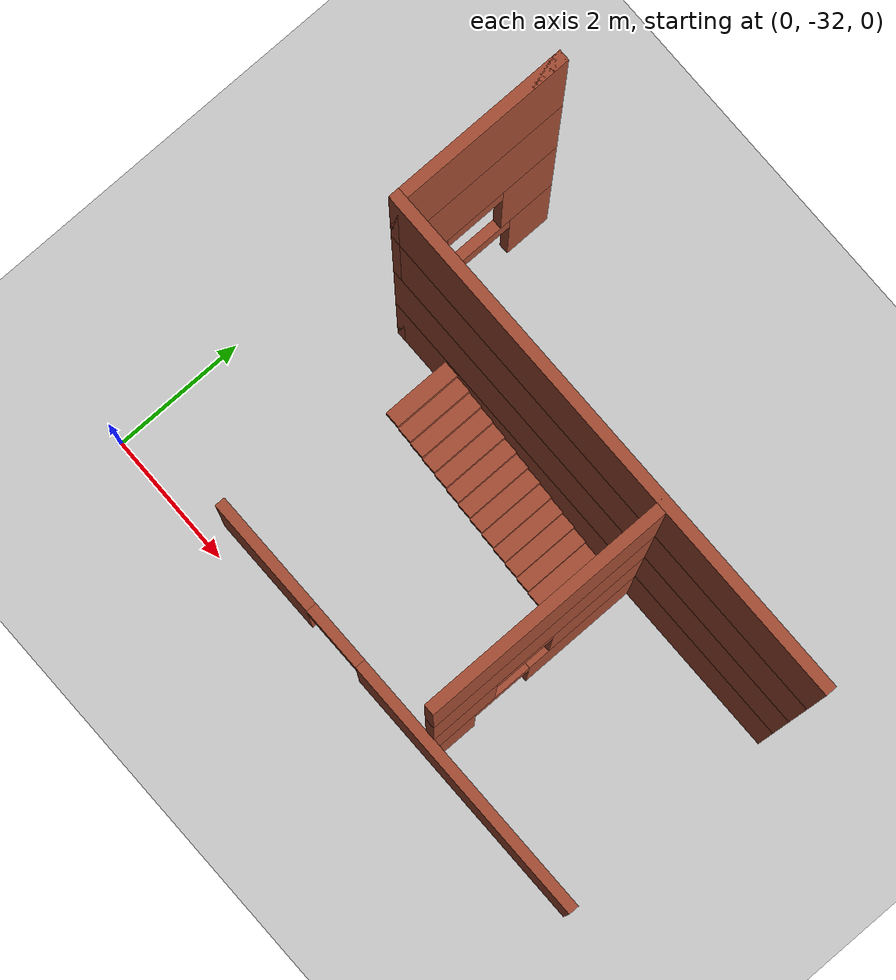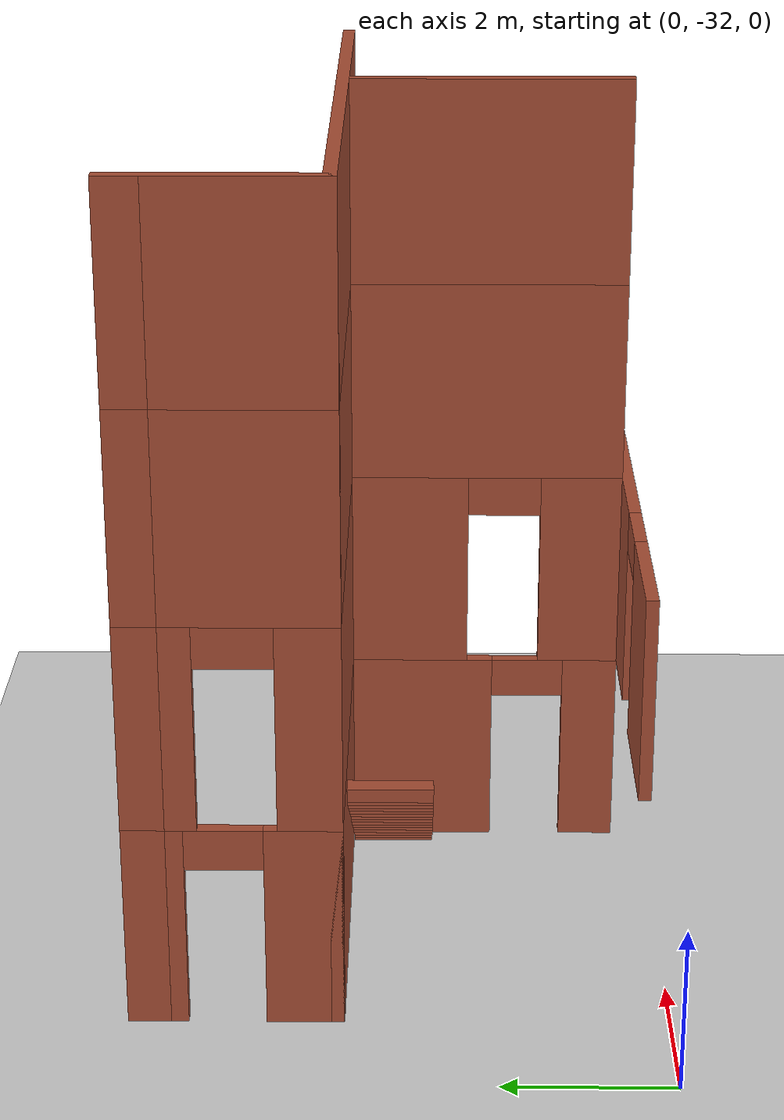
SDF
<sdf version="1.7">
 <world name="default">
  <model name="ground_plane">
   <static>1</static>
   <link name="link">
    <collision name="collision">
     <geometry><plane><normal>0 0 1</normal><size>300 300</size></plane></geometry>
     <surface>
      <contact><collide_bitmask>65535</collide_bitmask></contact>
      <friction><ode><mu>100</mu><mu2>50</mu2></ode></friction>
     </surface>
    </collision>
    <visual name="visual">
     <cast_shadows>0</cast_shadows>
     <geometry><plane><normal>0 0 1</normal><size>300 300</size></plane></geometry>
     <material>
      <script><uri>file://media/materials/scripts/gazebo.material</uri><name>Gazebo/Grey</name></script>
     </material>
    </visual>
   </link>
  </model>
  <model name="Drone_House_0">
   <pose>0.722097 -29.4245 0 0 -0 0</pose>
   <link name="Stairs_0">
    <visual name="Stairs_0_Visual_0">
     <pose>4.91856 0.660416 0.083333 0 -0 -1.5708</pose>
     <geometry><box><size>1 0.233333 0.166667</size></box></geometry>
     <material>
      <script><uri>file://media/materials/scripts/gazebo.material</uri><name>Gazebo/Bricks</name></script>
      <ambient>1 1 1 1</ambient>
     </material>
     <meta><layer>0</layer></meta>
    </visual>
    <collision name="Stairs_0_Collision_0">
     <geometry><box><size>1 0.233333 0.166667</size></box></geometry>
     <pose>4.91856 0.660416 0.083333 0 -0 -1.5708</pose>
    </collision>
    <visual name="Stairs_0_Visual_1">
     <pose>4.68522 0.660416 0.25 0 -0 -1.5708</pose>
     <geometry><box><size>1 0.233333 0.166667</size></box></geometry>
     <material>
      <script><uri>file://media/materials/scripts/gazebo.material</uri><name>Gazebo/Bricks</name></script>
      <ambient>1 1 1 1</ambient>
     </material>
     <meta><layer>0</layer></meta>
    </visual>
    <collision name="Stairs_0_Collision_1">
     <geometry><box><size>1 0.233333 0.166667</size></box></geometry>
     <pose>4.68522 0.660416 0.25 0 -0 -1.5708</pose>
    </collision>
    <visual name="Stairs_0_Visual_2">
     <pose>4.45189 0.660416 0.416667 0 -0 -1.5708</pose>
     <geometry><box><size>1 0.233333 0.166667</size></box></geometry>
     <material>
      <script><uri>file://media/materials/scripts/gazebo.material</uri><name>Gazebo/Bricks</name></script>
      <ambient>1 1 1 1</ambient>
     </material>
     <meta><layer>0</layer></meta>
    </visual>
    <collision name="Stairs_0_Collision_2">
     <geometry><box><size>1 0.233333 0.166667</size></box></geometry>
     <pose>4.45189 0.660416 0.416667 0 -0 -1.5708</pose>
    </collision>
    <visual name="Stairs_0_Visual_3">
     <pose>4.21856 0.660416 0.583333 0 -0 -1.5708</pose>
     <geometry><box><size>1 0.233333 0.166667</size></box></geometry>
     <material>
      <script><uri>file://media/materials/scripts/gazebo.material</uri><name>Gazebo/Bricks</name></script>
      <ambient>1 1 1 1</ambient>
     </material>
     <meta><layer>0</layer></meta>
    </visual>
    <collision name="Stairs_0_Collision_3">
     <geometry><box><size>1 0.233333 0.166667</size></box></geometry>
     <pose>4.21856 0.660416 0.583333 0 -0 -1.5708</pose>
    </collision>
    <visual name="Stairs_0_Visual_4">
     <pose>3.98522 0.660417 0.75 0 -0 -1.5708</pose>
     <geometry><box><size>1 0.233333 0.166667</size></box></geometry>
     <material>
      <script><uri>file://media/materials/scripts/gazebo.material</uri><name>Gazebo/Bricks</name></script>
      <ambient>1 1 1 1</ambient>
     </material>
     <meta><layer>0</layer></meta>
    </visual>
    <collision name="Stairs_0_Collision_4">
     <geometry><box><size>1 0.233333 0.166667</size></box></geometry>
     <pose>3.98522 0.660417 0.75 0 -0 -1.5708</pose>
    </collision>
    <visual name="Stairs_0_Visual_5">
     <pose>3.75189 0.660417 0.916667 0 -0 -1.5708</pose>
     <geometry><box><size>1 0.233333 0.166667</size></box></geometry>
     <material>
      <script><uri>file://media/materials/scripts/gazebo.material</uri><name>Gazebo/Bricks</name></script>
      <ambient>1 1 1 1</ambient>
     </material>
     <meta><layer>0</layer></meta>
    </visual>
    <collision name="Stairs_0_Collision_5">
     <geometry><box><size>1 0.233333 0.166667</size></box></geometry>
     <pose>3.75189 0.660417 0.916667 0 -0 -1.5708</pose>
    </collision>
    <visual name="Stairs_0_Visual_6">
     <pose>3.51856 0.660417 1.08333 0 -0 -1.5708</pose>
     <geometry><box><size>1 0.233333 0.166667</size></box></geometry>
     <material>
      <script><uri>file://media/materials/scripts/gazebo.material</uri><name>Gazebo/Bricks</name></script>
      <ambient>1 1 1 1</ambient>
     </material>
     <meta><layer>0</layer></meta>
    </visual>
    <collision name="Stairs_0_Collision_6">
     <geometry><box><size>1 0.233333 0.166667</size></box></geometry>
     <pose>3.51856 0.660417 1.08333 0 -0 -1.5708</pose>
    </collision>
    <visual name="Stairs_0_Visual_7">
     <pose>3.28522 0.660417 1.25 0 -0 -1.5708</pose>
     <geometry><box><size>1 0.233333 0.166667</size></box></geometry>
     <material>
      <script><uri>file://media/materials/scripts/gazebo.material</uri><name>Gazebo/Bricks</name></script>
      <ambient>1 1 1 1</ambient>
     </material>
     <meta><layer>0</layer></meta>
    </visual>
    <collision name="Stairs_0_Collision_7">
     <geometry><box><size>1 0.233333 0.166667</size></box></geometry>
     <pose>3.28522 0.660417 1.25 0 -0 -1.5708</pose>
    </collision>
    <visual name="Stairs_0_Visual_8">
     <pose>3.05189 0.660417 1.41667 0 -0 -1.5708</pose>
     <geometry><box><size>1 0.233333 0.166667</size></box></geometry>
     <material>
      <script><uri>file://media/materials/scripts/gazebo.material</uri><name>Gazebo/Bricks</name></script>
      <ambient>1 1 1 1</ambient>
     </material>
     <meta><layer>0</layer></meta>
    </visual>
    <collision name="Stairs_0_Collision_8">
     <geometry><box><size>1 0.233333 0.166667</size></box></geometry>
     <pose>3.05189 0.660417 1.41667 0 -0 -1.5708</pose>
    </collision>
    <visual name="Stairs_0_Visual_9">
     <pose>2.81856 0.660417 1.58333 0 -0 -1.5708</pose>
     <geometry><box><size>1 0.233333 0.166667</size></box></geometry>
     <material>
      <script><uri>file://media/materials/scripts/gazebo.material</uri><name>Gazebo/Bricks</name></script>
      <ambient>1 1 1 1</ambient>
     </material>
     <meta><layer>0</layer></meta>
    </visual>
    <collision name="Stairs_0_Collision_9">
     <geometry><box><size>1 0.233333 0.166667</size></box></geometry>
     <pose>2.81856 0.660417 1.58333 0 -0 -1.5708</pose>
    </collision>
    <visual name="Stairs_0_Visual_10">
     <pose>2.58522 0.660417 1.75 0 -0 -1.5708</pose>
     <geometry><box><size>1 0.233333 0.166667</size></box></geometry>
     <material>
      <script><uri>file://media/materials/scripts/gazebo.material</uri><name>Gazebo/Bricks</name></script>
      <ambient>1 1 1 1</ambient>
     </material>
     <meta><layer>0</layer></meta>
    </visual>
    <collision name="Stairs_0_Collision_10">
     <geometry><box><size>1 0.233333 0.166667</size></box></geometry>
     <pose>2.58522 0.660417 1.75 0 -0 -1.5708</pose>
    </collision>
    <visual name="Stairs_0_Visual_11">
     <pose>2.35189 0.660417 1.91667 0 -0 -1.5708</pose>
     <geometry><box><size>1 0.233333 0.166667</size></box></geometry>
     <material>
      <script><uri>file://media/materials/scripts/gazebo.material</uri><name>Gazebo/Bricks</name></script>
      <ambient>1 1 1 1</ambient>
     </material>
     <meta><layer>0</layer></meta>
    </visual>
    <collision name="Stairs_0_Collision_11">
     <geometry><box><size>1 0.233333 0.166667</size></box></geometry>
     <pose>2.35189 0.660417 1.91667 0 -0 -1.5708</pose>
    </collision>
    <visual name="Stairs_0_Visual_12">
     <pose>2.11856 0.660417 2.08333 0 -0 -1.5708</pose>
     <geometry><box><size>1 0.233333 0.166667</size></box></geometry>
     <material>
      <script><uri>file://media/materials/scripts/gazebo.material</uri><name>Gazebo/Bricks</name></script>
      <ambient>1 1 1 1</ambient>
     </material>
     <meta><layer>0</layer></meta>
    </visual>
    <collision name="Stairs_0_Collision_12">
     <geometry><box><size>1 0.233333 0.166667</size></box></geometry>
     <pose>2.11856 0.660417 2.08333 0 -0 -1.5708</pose>
    </collision>
    <visual name="Stairs_0_Visual_13">
     <pose>1.88522 0.660417 2.25 0 -0 -1.5708</pose>
     <geometry><box><size>1 0.233333 0.166667</size></box></geometry>
     <material>
      <script><uri>file://media/materials/scripts/gazebo.material</uri><name>Gazebo/Bricks</name></script>
      <ambient>1 1 1 1</ambient>
     </material>
     <meta><layer>0</layer></meta>
    </visual>
    <collision name="Stairs_0_Collision_13">
     <geometry><box><size>1 0.233333 0.166667</size></box></geometry>
     <pose>1.88522 0.660417 2.25 0 -0 -1.5708</pose>
    </collision>
    <visual name="Stairs_0_Visual_14">
     <pose>1.65189 0.660417 2.41667 0 -0 -1.5708</pose>
     <geometry><box><size>1 0.233333 0.166667</size></box></geometry>
     <material>
      <script><uri>file://media/materials/scripts/gazebo.material</uri><name>Gazebo/Bricks</name></script>
      <ambient>1 1 1 1</ambient>
     </material>
     <meta><layer>0</layer></meta>
    </visual>
    <collision name="Stairs_0_Collision_14">
     <geometry><box><size>1 0.233333 0.166667</size></box></geometry>
     <pose>1.65189 0.660417 2.41667 0 -0 -1.5708</pose>
    </collision>
   </link>
   <link name="Wall_105">
    <collision name="Wall_105_Collision">
     <geometry><box><size>3.5 0.15 2.5</size></box></geometry>
     <pose>0 0 1.25 0 -0 0</pose>
    </collision>
    <visual name="Wall_105_Visual">
     <pose>0 0 1.25 0 -0 0</pose>
     <geometry><box><size>3.5 0.15 2.5</size></box></geometry>
     <material>
      <script><uri>file://media/materials/scripts/gazebo.material</uri><name>Gazebo/Bricks</name></script>
      <ambient>1 1 1 1</ambient>
     </material>
     <meta><layer>2</layer></meta>
    </visual>
    <pose>5.09404 -0.429379 5 0 -0 -1.5708</pose>
   </link>
   <link name="Wall_112">
    <collision name="Wall_112_Collision">
     <geometry><box><size>0.5 0.15 2.5</size></box></geometry>
     <pose>0 0 1.25 0 -0 0</pose>
    </collision>
    <visual name="Wall_112_Visual">
     <pose>0 0 1.25 0 -0 0</pose>
     <geometry><box><size>0.5 0.15 2.5</size></box></geometry>
     <material>
      <script><uri>file://media/materials/scripts/gazebo.material</uri><name>Gazebo/Bricks</name></script>
      <ambient>1 1 1 1</ambient>
     </material>
     <meta><layer>3</layer></meta>
    </visual>
    <pose>0.626064 3.425 7.5 0 -0 1.5708</pose>
   </link>
   <link name="Wall_116">
    <collision name="Wall_116_Collision">
     <geometry><box><size>2.5 0.15 2.5</size></box></geometry>
     <pose>0 0 1.25 0 -0 0</pose>
    </collision>
    <visual name="Wall_116_Visual">
     <pose>0 0 1.25 0 -0 0</pose>
     <geometry><box><size>2.5 0.15 2.5</size></box></geometry>
     <material>
      <script><uri>file://media/materials/scripts/gazebo.material</uri><name>Gazebo/Bricks</name></script>
      <ambient>1 1 1 1</ambient>
     </material>
     <meta><layer>3</layer></meta>
    </visual>
    <pose>0.626064 2.425 7.5 0 -0 -1.5708</pose>
   </link>
   <link name="Wall_117">
    <collision name="Wall_117_Collision">
     <geometry><box><size>7.25 0.15 2.5</size></box></geometry>
     <pose>0 0 1.25 0 -0 0</pose>
    </collision>
    <visual name="Wall_117_Visual">
     <pose>0 0 1.25 0 -0 0</pose>
     <geometry><box><size>7.25 0.15 2.5</size></box></geometry>
     <material>
      <script><uri>file://media/materials/scripts/gazebo.material</uri><name>Gazebo/Bricks</name></script>
      <ambient>1 1 1 1</ambient>
     </material>
     <meta><layer>3</layer></meta>
    </visual>
    <pose>4.17606 1.25 7.5 0 -0 0</pose>
   </link>
   <link name="Wall_12">
    <collision name="Wall_12_Collision">
     <geometry><box><size>0.5 0.15 2.5</size></box></geometry>
     <pose>0 0 1.25 0 -0 0</pose>
    </collision>
    <visual name="Wall_12_Visual">
     <pose>0 0 1.25 0 -0 0</pose>
     <geometry><box><size>0.5 0.15 2.5</size></box></geometry>
     <material>
      <script><uri>file://media/materials/scripts/gazebo.material</uri><name>Gazebo/Bricks</name></script>
      <ambient>1 1 1 1</ambient>
     </material>
     <meta><layer>0</layer></meta>
    </visual>
    <pose>0.626064 3.425 0 0 -0 1.5708</pose>
   </link>
   <link name="Wall_127">
    <collision name="Wall_127_Collision">
     <geometry><box><size>3.5 0.15 2.5</size></box></geometry>
     <pose>0 0 1.25 0 -0 0</pose>
    </collision>
    <visual name="Wall_127_Visual">
     <pose>0 0 1.25 0 -0 0</pose>
     <geometry><box><size>3.5 0.15 2.5</size></box></geometry>
     <material>
      <script><uri>file://media/materials/scripts/gazebo.material</uri><name>Gazebo/Bricks</name></script>
      <ambient>1 1 1 1</ambient>
     </material>
     <meta><layer>3</layer></meta>
    </visual>
    <pose>5.09404 -0.429379 7.5 0 -0 -1.5708</pose>
   </link>
   <link name="Wall_18">
    <pose>0.626064 2.425 0 0 -0 -1.5708</pose>
    <visual name="Wall_18_Visual_0">
     <pose>-0.898715 0 1.25 0 -0 0</pose>
     <geometry><box><size>0.70257 0.15 2.5</size></box></geometry>
     <material>
      <script><uri>file://media/materials/scripts/gazebo.material</uri><name>Gazebo/Bricks</name></script>
      <ambient>1 1 1 1</ambient>
     </material>
     <meta><layer>0</layer></meta>
    </visual>
    <collision name="Wall_18_Collision_0">
     <geometry><box><size>0.70257 0.15 2.5</size></box></geometry>
     <pose>-0.898715 0 1.25 0 -0 0</pose>
    </collision>
    <visual name="Wall_18_Visual_1">
     <pose>0.801285 0 1.25 0 -0 0</pose>
     <geometry><box><size>0.89743 0.15 2.5</size></box></geometry>
     <material>
      <script><uri>file://media/materials/scripts/gazebo.material</uri><name>Gazebo/Bricks</name></script>
      <ambient>1 1 1 1</ambient>
     </material>
     <meta><layer>0</layer></meta>
    </visual>
    <collision name="Wall_18_Collision_1">
     <geometry><box><size>0.89743 0.15 2.5</size></box></geometry>
     <pose>0.801285 0 1.25 0 -0 0</pose>
    </collision>
    <visual name="Wall_18_Visual_2">
     <pose>-0.09743 0 2.25 0 -0 0</pose>
     <geometry><box><size>0.9 0.15 0.5</size></box></geometry>
     <material>
      <script><uri>file://media/materials/scripts/gazebo.material</uri><name>Gazebo/Bricks</name></script>
      <ambient>1 1 1 1</ambient>
     </material>
     <meta><layer>0</layer></meta>
    </visual>
    <collision name="Wall_18_Collision_2">
     <geometry><box><size>0.9 0.15 0.5</size></box></geometry>
     <pose>-0.09743 0 2.25 0 -0 0</pose>
    </collision>
   </link>
   <link name="Wall_19">
    <collision name="Wall_19_Collision">
     <geometry><box><size>7.25 0.15 2.5</size></box></geometry>
     <pose>0 0 1.25 0 -0 0</pose>
    </collision>
    <visual name="Wall_19_Visual">
     <pose>0 0 1.25 0 -0 0</pose>
     <geometry><box><size>7.25 0.15 2.5</size></box></geometry>
     <material>
      <script><uri>file://media/materials/scripts/gazebo.material</uri><name>Gazebo/Bricks</name></script>
      <ambient>1 1 1 1</ambient>
     </material>
     <meta><layer>0</layer></meta>
    </visual>
    <pose>4.17606 1.25 0 0 -0 0</pose>
   </link>
   <link name="Wall_33">
    <pose>5.09404 -0.429379 0 0 -0 -1.5708</pose>
    <visual name="Wall_33_Visual_0">
     <pose>-0.793691 0 1.25 0 -0 0</pose>
     <geometry><box><size>1.91262 0.15 2.5</size></box></geometry>
     <material>
      <script><uri>file://media/materials/scripts/gazebo.material</uri><name>Gazebo/Bricks</name></script>
      <ambient>1 1 1 1</ambient>
     </material>
     <meta><layer>0</layer></meta>
    </visual>
    <collision name="Wall_33_Collision_0">
     <geometry><box><size>1.91262 0.15 2.5</size></box></geometry>
     <pose>-0.793691 0 1.25 0 -0 0</pose>
    </collision>
    <visual name="Wall_33_Visual_1">
     <pose>1.40631 0 1.25 0 -0 0</pose>
     <geometry><box><size>0.687383 0.15 2.5</size></box></geometry>
     <material>
      <script><uri>file://media/materials/scripts/gazebo.material</uri><name>Gazebo/Bricks</name></script>
      <ambient>1 1 1 1</ambient>
     </material>
     <meta><layer>0</layer></meta>
    </visual>
    <collision name="Wall_33_Collision_1">
     <geometry><box><size>0.687383 0.15 2.5</size></box></geometry>
     <pose>1.40631 0 1.25 0 -0 0</pose>
    </collision>
    <visual name="Wall_33_Visual_2">
     <pose>0.612617 0 2.25 0 -0 0</pose>
     <geometry><box><size>0.9 0.15 0.5</size></box></geometry>
     <material>
      <script><uri>file://media/materials/scripts/gazebo.material</uri><name>Gazebo/Bricks</name></script>
      <ambient>1 1 1 1</ambient>
     </material>
     <meta><layer>0</layer></meta>
    </visual>
    <collision name="Wall_33_Collision_2">
     <geometry><box><size>0.9 0.15 0.5</size></box></geometry>
     <pose>0.612617 0 2.25 0 -0 0</pose>
    </collision>
   </link>
   <link name="Wall_41">
    <collision name="Wall_41_Collision">
     <geometry><box><size>0.5 0.15 2.5</size></box></geometry>
     <pose>0 0 1.25 0 -0 0</pose>
    </collision>
    <visual name="Wall_41_Visual">
     <pose>0 0 1.25 0 -0 0</pose>
     <geometry><box><size>0.5 0.15 2.5</size></box></geometry>
     <material>
      <script><uri>file://media/materials/scripts/gazebo.material</uri><name>Gazebo/Bricks</name></script>
      <ambient>1 1 1 1</ambient>
     </material>
     <meta><layer>1</layer></meta>
    </visual>
    <pose>0.626064 3.425 2.5 0 -0 1.5708</pose>
   </link>
   <link name="Wall_45">
    <pose>0.626064 2.425 2.5 0 -0 -1.5708</pose>
    <visual name="Wall_45_Visual_0">
     <pose>-0.818915 0 1.25 0 -0 0</pose>
     <geometry><box><size>0.862171 0.15 2.5</size></box></geometry>
     <material>
      <script><uri>file://media/materials/scripts/gazebo.material</uri><name>Gazebo/Bricks</name></script>
      <ambient>1 1 1 1</ambient>
     </material>
     <meta><layer>1</layer></meta>
    </visual>
    <collision name="Wall_45_Collision_0">
     <geometry><box><size>0.862171 0.15 2.5</size></box></geometry>
     <pose>-0.818915 0 1.25 0 -0 0</pose>
    </collision>
    <visual name="Wall_45_Visual_1">
     <pose>0.881085 0 1.25 0 -0 0</pose>
     <geometry><box><size>0.737829 0.15 2.5</size></box></geometry>
     <material>
      <script><uri>file://media/materials/scripts/gazebo.material</uri><name>Gazebo/Bricks</name></script>
      <ambient>1 1 1 1</ambient>
     </material>
     <meta><layer>1</layer></meta>
    </visual>
    <collision name="Wall_45_Collision_1">
     <geometry><box><size>0.737829 0.15 2.5</size></box></geometry>
     <pose>0.881085 0 1.25 0 -0 0</pose>
    </collision>
    <visual name="Wall_45_Visual_2">
     <pose>0.062171 0 2.25 0 -0 0</pose>
     <geometry><box><size>0.9 0.15 0.5</size></box></geometry>
     <material>
      <script><uri>file://media/materials/scripts/gazebo.material</uri><name>Gazebo/Bricks</name></script>
      <ambient>1 1 1 1</ambient>
     </material>
     <meta><layer>1</layer></meta>
    </visual>
    <collision name="Wall_45_Collision_2">
     <geometry><box><size>0.9 0.15 0.5</size></box></geometry>
     <pose>0.062171 0 2.25 0 -0 0</pose>
    </collision>
   </link>
   <link name="Wall_46">
    <collision name="Wall_46_Collision">
     <geometry><box><size>7.25 0.15 2.5</size></box></geometry>
     <pose>0 0 1.25 0 -0 0</pose>
    </collision>
    <visual name="Wall_46_Visual">
     <pose>0 0 1.25 0 -0 0</pose>
     <geometry><box><size>7.25 0.15 2.5</size></box></geometry>
     <material>
      <script><uri>file://media/materials/scripts/gazebo.material</uri><name>Gazebo/Bricks</name></script>
      <ambient>1 1 1 1</ambient>
     </material>
     <meta><layer>1</layer></meta>
    </visual>
    <pose>4.17606 1.25 2.5 0 -0 0</pose>
   </link>
   <link name="Wall_52">
    <pose>4.55106 -2.25 2.5 0 -0 0</pose>
    <visual name="Wall_52_Visual_0">
     <pose>-2.40312 0 1.25 0 -0 0</pose>
     <geometry><box><size>1.69376 0.15 2.5</size></box></geometry>
     <material>
      <script><uri>file://media/materials/scripts/gazebo.material</uri><name>Gazebo/Bricks</name></script>
      <ambient>1 1 1 1</ambient>
     </material>
     <meta><layer>1</layer></meta>
    </visual>
    <collision name="Wall_52_Collision_0">
     <geometry><box><size>1.69376 0.15 2.5</size></box></geometry>
     <pose>-2.40312 0 1.25 0 -0 0</pose>
    </collision>
    <visual name="Wall_52_Visual_1">
     <pose>1.29688 0 1.25 0 -0 0</pose>
     <geometry><box><size>3.90624 0.15 2.5</size></box></geometry>
     <material>
      <script><uri>file://media/materials/scripts/gazebo.material</uri><name>Gazebo/Bricks</name></script>
      <ambient>1 1 1 1</ambient>
     </material>
     <meta><layer>1</layer></meta>
    </visual>
    <collision name="Wall_52_Collision_1">
     <geometry><box><size>3.90624 0.15 2.5</size></box></geometry>
     <pose>1.29688 0 1.25 0 -0 0</pose>
    </collision>
    <visual name="Wall_52_Visual_2">
     <pose>-1.10624 0 2.25 0 -0 0</pose>
     <geometry><box><size>0.9 0.15 0.5</size></box></geometry>
     <material>
      <script><uri>file://media/materials/scripts/gazebo.material</uri><name>Gazebo/Bricks</name></script>
      <ambient>1 1 1 1</ambient>
     </material>
     <meta><layer>1</layer></meta>
    </visual>
    <collision name="Wall_52_Collision_2">
     <geometry><box><size>0.9 0.15 0.5</size></box></geometry>
     <pose>-1.10624 0 2.25 0 -0 0</pose>
    </collision>
   </link>
   <link name="Wall_56">
    <pose>5.09404 -0.429379 2.5 0 -0 -1.5708</pose>
    <visual name="Wall_56_Visual_0">
     <pose>-0.953293 0 1.25 0 -0 0</pose>
     <geometry><box><size>1.59342 0.15 2.5</size></box></geometry>
     <material>
      <script><uri>file://media/materials/scripts/gazebo.material</uri><name>Gazebo/Bricks</name></script>
      <ambient>1 1 1 1</ambient>
     </material>
     <meta><layer>1</layer></meta>
    </visual>
    <collision name="Wall_56_Collision_0">
     <geometry><box><size>1.59342 0.15 2.5</size></box></geometry>
     <pose>-0.953293 0 1.25 0 -0 0</pose>
    </collision>
    <visual name="Wall_56_Visual_1">
     <pose>1.24671 0 1.25 0 -0 0</pose>
     <geometry><box><size>1.00659 0.15 2.5</size></box></geometry>
     <material>
      <script><uri>file://media/materials/scripts/gazebo.material</uri><name>Gazebo/Bricks</name></script>
      <ambient>1 1 1 1</ambient>
     </material>
     <meta><layer>1</layer></meta>
    </visual>
    <collision name="Wall_56_Collision_1">
     <geometry><box><size>1.00659 0.15 2.5</size></box></geometry>
     <pose>1.24671 0 1.25 0 -0 0</pose>
    </collision>
    <visual name="Wall_56_Visual_2">
     <pose>0.293415 0 2.25 0 -0 0</pose>
     <geometry><box><size>0.9 0.15 0.5</size></box></geometry>
     <material>
      <script><uri>file://media/materials/scripts/gazebo.material</uri><name>Gazebo/Bricks</name></script>
      <ambient>1 1 1 1</ambient>
     </material>
     <meta><layer>1</layer></meta>
    </visual>
    <collision name="Wall_56_Collision_2">
     <geometry><box><size>0.9 0.15 0.5</size></box></geometry>
     <pose>0.293415 0 2.25 0 -0 0</pose>
    </collision>
   </link>
   <link name="Wall_90">
    <collision name="Wall_90_Collision">
     <geometry><box><size>0.5 0.15 2.5</size></box></geometry>
     <pose>0 0 1.25 0 -0 0</pose>
    </collision>
    <visual name="Wall_90_Visual">
     <pose>0 0 1.25 0 -0 0</pose>
     <geometry><box><size>0.5 0.15 2.5</size></box></geometry>
     <material>
      <script><uri>file://media/materials/scripts/gazebo.material</uri><name>Gazebo/Bricks</name></script>
      <ambient>1 1 1 1</ambient>
     </material>
     <meta><layer>2</layer></meta>
    </visual>
    <pose>0.626064 3.425 5 0 -0 1.5708</pose>
   </link>
   <link name="Wall_94">
    <collision name="Wall_94_Collision">
     <geometry><box><size>2.5 0.15 2.5</size></box></geometry>
     <pose>0 0 1.25 0 -0 0</pose>
    </collision>
    <visual name="Wall_94_Visual">
     <pose>0 0 1.25 0 -0 0</pose>
     <geometry><box><size>2.5 0.15 2.5</size></box></geometry>
     <material>
      <script><uri>file://media/materials/scripts/gazebo.material</uri><name>Gazebo/Bricks</name></script>
      <ambient>1 1 1 1</ambient>
     </material>
     <meta><layer>2</layer></meta>
    </visual>
    <pose>0.626064 2.425 5 0 -0 -1.5708</pose>
   </link>
   <link name="Wall_95">
    <collision name="Wall_95_Collision">
     <geometry><box><size>7.25 0.15 2.5</size></box></geometry>
     <pose>0 0 1.25 0 -0 0</pose>
    </collision>
    <visual name="Wall_95_Visual">
     <pose>0 0 1.25 0 -0 0</pose>
     <geometry><box><size>7.25 0.15 2.5</size></box></geometry>
     <material>
      <script><uri>file://media/materials/scripts/gazebo.material</uri><name>Gazebo/Bricks</name></script>
      <ambient>1 1 1 1</ambient>
     </material>
     <meta><layer>2</layer></meta>
    </visual>
    <pose>4.17606 1.25 5 0 -0 0</pose>
   </link>
   <static>1</static>
  </model>
 </world>
</sdf>
